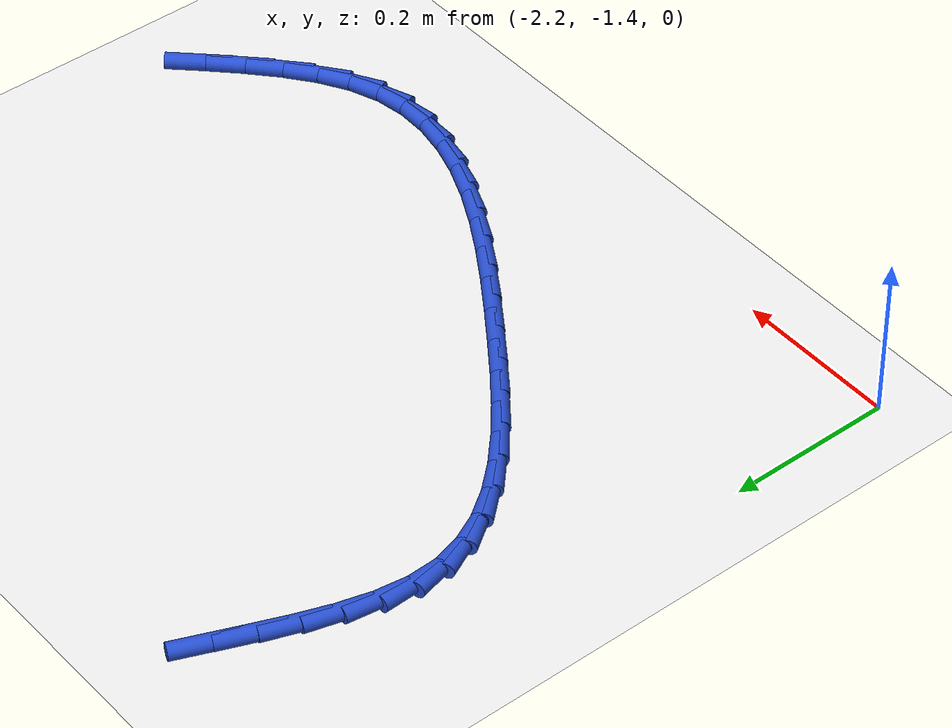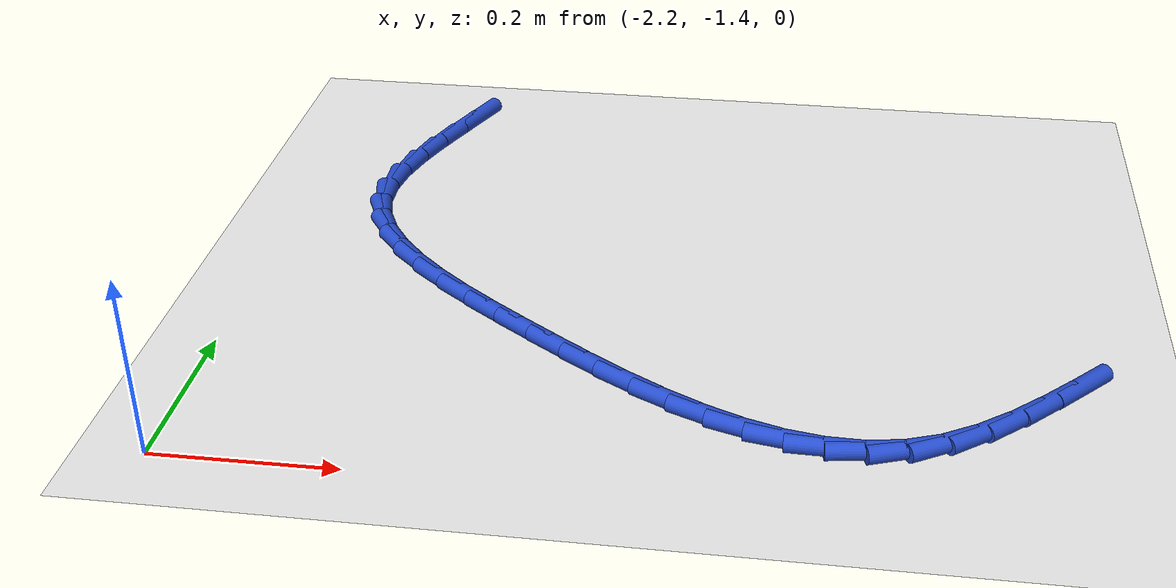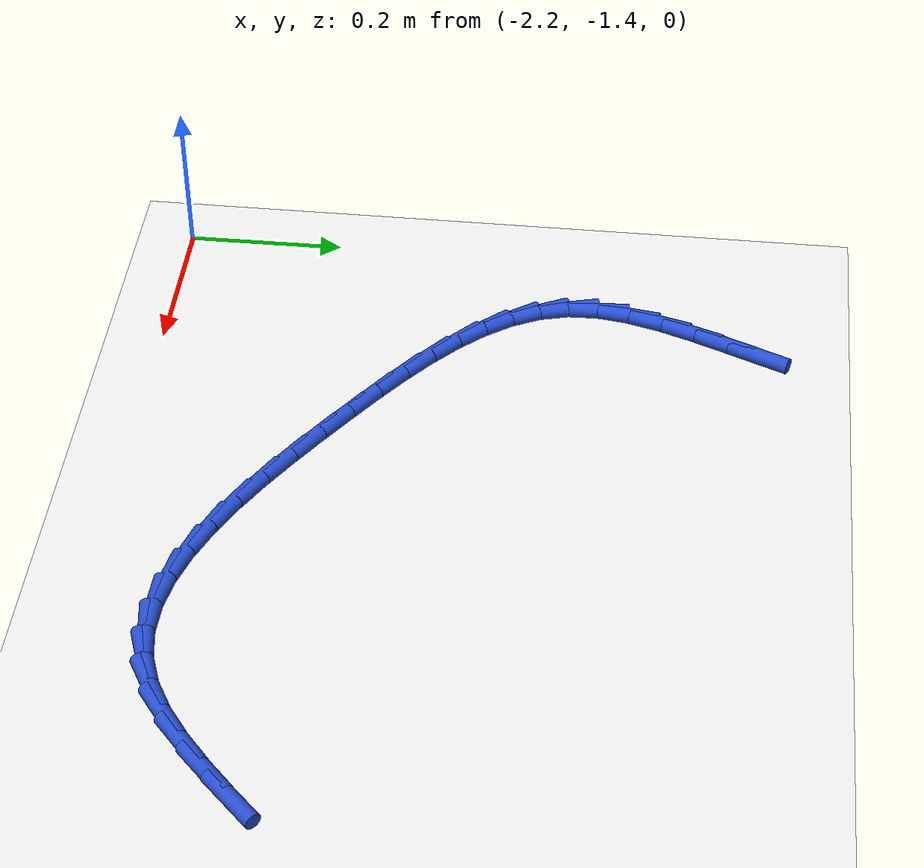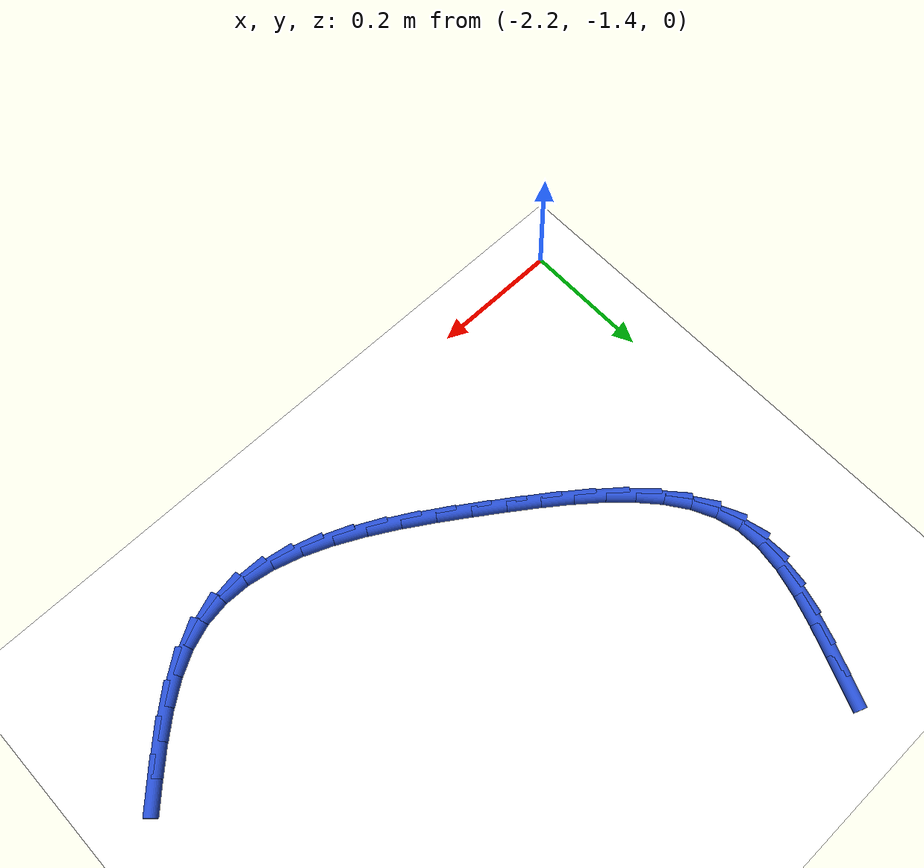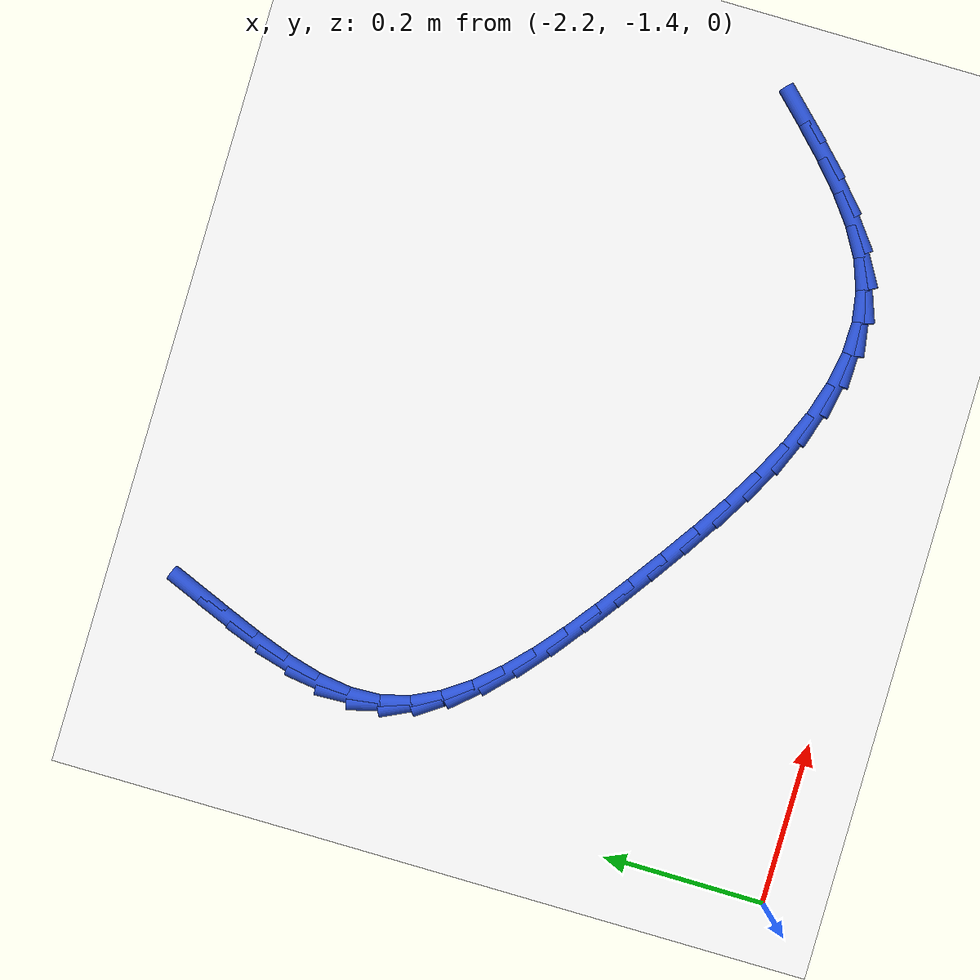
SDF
<sdf version="1.6">
 <world name="default">
  <model name="ground_plane">
   <static>1</static>
   <link name="link">
    <collision name="collision">
     <geometry><plane><normal>0 0 1</normal><size>100 100</size></plane></geometry>
     <surface><friction><ode><mu>100</mu><mu2>50</mu2></ode></friction></surface>
    </collision>
    <visual name="visual">
     <cast_shadows>0</cast_shadows>
     <geometry><plane><normal>0 0 1</normal><size>100 100</size></plane></geometry>
     <material>
      <script><uri>file://media/materials/scripts/gazebo.material</uri><name>Gazebo/WhiteGlow</name></script>
     </material>
    </visual>
   </link>
  </model>
  <model name="line">
   <link name="link_103">
    <pose>-2.0301431449412486 -0.6431760372272682 0.01 0 1.57 1.1762117406984114</pose>
    <collision name="collision">
     <geometry><cylinder><radius>0.01</radius><length>0.08</length></cylinder></geometry>
    </collision>
    <visual name="visual">
     <material>
      <script><name>Gazebo/Blue</name><uri>file://media/materials/scripts/gazebo.material</uri></script>
     </material>
     <geometry><cylinder><radius>0.01</radius><length>0.08</length></cylinder></geometry>
    </visual>
   </link>
   <link name="link_104">
    <pose>-2.047849991314228 -0.6856972025003046 0.01 0 1.57 1.1854771524762735</pose>
    <collision name="collision">
     <geometry><cylinder><radius>0.01</radius><length>0.08</length></cylinder></geometry>
    </collision>
    <visual name="visual">
     <material>
      <script><name>Gazebo/Blue</name><uri>file://media/materials/scripts/gazebo.material</uri></script>
     </material>
     <geometry><cylinder><radius>0.01</radius><length>0.08</length></cylinder></geometry>
    </visual>
   </link>
   <link name="link_105">
    <pose>-2.06502794714183 -0.7280498269964726 0.01 0 1.57 1.2265013167445675</pose>
    <collision name="collision">
     <geometry><cylinder><radius>0.01</radius><length>0.08</length></cylinder></geometry>
    </collision>
    <visual name="visual">
     <material>
      <script><name>Gazebo/Blue</name><uri>file://media/materials/scripts/gazebo.material</uri></script>
     </material>
     <geometry><cylinder><radius>0.01</radius><length>0.08</length></cylinder></geometry>
    </visual>
   </link>
   <link name="link_106">
    <pose>-2.080032477931388 -0.7698945162749997 0.01 0 1.57 1.3044200234111163</pose>
    <collision name="collision">
     <geometry><cylinder><radius>0.01</radius><length>0.08</length></cylinder></geometry>
    </collision>
    <visual name="visual">
     <material>
      <script><name>Gazebo/Blue</name><uri>file://media/materials/scripts/gazebo.material</uri></script>
     </material>
     <geometry><cylinder><radius>0.01</radius><length>0.08</length></cylinder></geometry>
    </visual>
   </link>
   <link name="link_107">
    <pose>-2.091219049190233 -0.810891875895113 0.01 0 1.57 1.427992428332047</pose>
    <collision name="collision">
     <geometry><cylinder><radius>0.01</radius><length>0.08</length></cylinder></geometry>
    </collision>
    <visual name="visual">
     <material>
      <script><name>Gazebo/Blue</name><uri>file://media/materials/scripts/gazebo.material</uri></script>
     </material>
     <geometry><cylinder><radius>0.01</radius><length>0.08</length></cylinder></geometry>
    </visual>
   </link>
   <link name="link_108">
    <pose>-2.0969431264256957 -0.8507025114160396 0.01 0 1.57 -1.5347276165737962</pose>
    <collision name="collision">
     <geometry><cylinder><radius>0.01</radius><length>0.08</length></cylinder></geometry>
    </collision>
    <visual name="visual">
     <material>
      <script><name>Gazebo/Blue</name><uri>file://media/materials/scripts/gazebo.material</uri></script>
     </material>
     <geometry><cylinder><radius>0.01</radius><length>0.08</length></cylinder></geometry>
    </visual>
   </link>
   <link name="link_109">
    <pose>-2.0955616433839954 -0.8889873267114714 0.01 0 1.57 -1.3172273057758372</pose>
    <collision name="collision">
     <geometry><cylinder><radius>0.01</radius><length>0.08</length></cylinder></geometry>
    </collision>
    <visual name="visual">
     <material>
      <script><name>Gazebo/Blue</name><uri>file://media/materials/scripts/gazebo.material</uri></script>
     </material>
     <geometry><cylinder><radius>0.01</radius><length>0.08</length></cylinder></geometry>
    </visual>
   </link>
   <link name="link_110">
    <pose>-2.08608891797963 -0.9255407919350799 0.01 0 1.57 -1.121461491586728</pose>
    <collision name="collision">
     <geometry><cylinder><radius>0.01</radius><length>0.08</length></cylinder></geometry>
    </collision>
    <visual name="visual">
     <material>
      <script><name>Gazebo/Blue</name><uri>file://media/materials/scripts/gazebo.material</uri></script>
     </material>
     <geometry><cylinder><radius>0.01</radius><length>0.08</length></cylinder></geometry>
    </visual>
   </link>
   <link name="link_111">
    <pose>-2.0692299390866697 -0.9605008851034232 0.01 0 1.57 -0.9644680126302632</pose>
    <collision name="collision">
     <geometry><cylinder><radius>0.01</radius><length>0.08</length></cylinder></geometry>
    </collision>
    <visual name="visual">
     <material>
      <script><name>Gazebo/Blue</name><uri>file://media/materials/scripts/gazebo.material</uri></script>
     </material>
     <geometry><cylinder><radius>0.01</radius><length>0.08</length></cylinder></geometry>
    </visual>
   </link>
   <link name="link_112">
    <pose>-2.0459577487908316 -0.9940600468624385 0.01 0 1.57 -0.8449106869923207</pose>
    <collision name="collision">
     <geometry><cylinder><radius>0.01</radius><length>0.08</length></cylinder></geometry>
    </collision>
    <visual name="visual">
     <material>
      <script><name>Gazebo/Blue</name><uri>file://media/materials/scripts/gazebo.material</uri></script>
     </material>
     <geometry><cylinder><radius>0.01</radius><length>0.08</length></cylinder></geometry>
    </visual>
   </link>
   <link name="link_113">
    <pose>-2.01724538917783 -1.0264107178580617 0.01 0 1.57 -0.7568096360408149</pose>
    <collision name="collision">
     <geometry><cylinder><radius>0.01</radius><length>0.08</length></cylinder></geometry>
    </collision>
    <visual name="visual">
     <material>
      <script><name>Gazebo/Blue</name><uri>file://media/materials/scripts/gazebo.material</uri></script>
     </material>
     <geometry><cylinder><radius>0.01</radius><length>0.08</length></cylinder></geometry>
    </visual>
   </link>
   <link name="link_114">
    <pose>-1.984065902333378 -1.0577453387362283 0.01 0 1.57 -0.6939283076275171</pose>
    <collision name="collision">
     <geometry><cylinder><radius>0.01</radius><length>0.08</length></cylinder></geometry>
    </collision>
    <visual name="visual">
     <material>
      <script><name>Gazebo/Blue</name><uri>file://media/materials/scripts/gazebo.material</uri></script>
     </material>
     <geometry><cylinder><radius>0.01</radius><length>0.08</length></cylinder></geometry>
    </visual>
   </link>
   <link name="link_115">
    <pose>-1.9473923303431901 -1.0882563501428757 0.01 0 1.57 -0.6513555896569337</pose>
    <collision name="collision">
     <geometry><cylinder><radius>0.01</radius><length>0.08</length></cylinder></geometry>
    </collision>
    <visual name="visual">
     <material>
      <script><name>Gazebo/Blue</name><uri>file://media/materials/scripts/gazebo.material</uri></script>
     </material>
     <geometry><cylinder><radius>0.01</radius><length>0.08</length></cylinder></geometry>
    </visual>
   </link>
   <link name="link_116">
    <pose>-1.9081977152929825 -1.1181361927239388 0.01 0 1.57 -0.6257413349231378</pose>
    <collision name="collision">
     <geometry><cylinder><radius>0.01</radius><length>0.08</length></cylinder></geometry>
    </collision>
    <visual name="visual">
     <material>
      <script><name>Gazebo/Blue</name><uri>file://media/materials/scripts/gazebo.material</uri></script>
     </material>
     <geometry><cylinder><radius>0.01</radius><length>0.08</length></cylinder></geometry>
    </visual>
   </link>
   <link name="link_117">
    <pose>-1.8674550992684693 -1.1475773071253543 0.01 0 1.57 -0.6133267885039331</pose>
    <collision name="collision">
     <geometry><cylinder><radius>0.01</radius><length>0.08</length></cylinder></geometry>
    </collision>
    <visual name="visual">
     <material>
      <script><name>Gazebo/Blue</name><uri>file://media/materials/scripts/gazebo.material</uri></script>
     </material>
     <geometry><cylinder><radius>0.01</radius><length>0.08</length></cylinder></geometry>
    </visual>
   </link>
   <link name="link_118">
    <pose>-1.826077266635734 -1.176702431323154 0.01 0 1.57 -0.5977464727862912</pose>
    <collision name="collision">
     <geometry><cylinder><radius>0.01</radius><length>0.08</length></cylinder></geometry>
    </collision>
    <visual name="visual">
     <material>
      <script><name>Gazebo/Blue</name><uri>file://media/materials/scripts/gazebo.material</uri></script>
     </material>
     <geometry><cylinder><radius>0.01</radius><length>0.08</length></cylinder></geometry>
    </visual>
   </link>
   <link name="link_119">
    <pose>-1.7844603266702903 -1.2050366432174893 0.01 0 1.57 -0.5703648764972896</pose>
    <collision name="collision">
     <geometry><cylinder><radius>0.01</radius><length>0.08</length></cylinder></geometry>
    </collision>
    <visual name="visual">
     <material>
      <script><name>Gazebo/Blue</name><uri>file://media/materials/scripts/gazebo.material</uri></script>
     </material>
     <geometry><cylinder><radius>0.01</radius><length>0.08</length></cylinder></geometry>
    </visual>
   </link>
   <link name="link_120">
    <pose>-1.7427376223404374 -1.2318010677330895 0.01 0 1.57 -0.5296832360924953</pose>
    <collision name="collision">
     <geometry><cylinder><radius>0.01</radius><length>0.08</length></cylinder></geometry>
    </collision>
    <visual name="visual">
     <material>
      <script><name>Gazebo/Blue</name><uri>file://media/materials/scripts/gazebo.material</uri></script>
     </material>
     <geometry><cylinder><radius>0.01</radius><length>0.08</length></cylinder></geometry>
    </visual>
   </link>
   <link name="link_121">
    <pose>-1.7010404206032856 -1.2562144283841459 0.01 0 1.57 -0.47343639143580135</pose>
    <collision name="collision">
     <geometry><cylinder><radius>0.01</radius><length>0.08</length></cylinder></geometry>
    </collision>
    <visual name="visual">
     <material>
      <script><name>Gazebo/Blue</name><uri>file://media/materials/scripts/gazebo.material</uri></script>
     </material>
     <geometry><cylinder><radius>0.01</radius><length>0.08</length></cylinder></geometry>
    </visual>
   </link>
   <link name="link_122">
    <pose>-1.6594999884159416 -1.2774954486848498 0.01 0 1.57 -0.39848072228137044</pose>
    <collision name="collision">
     <geometry><cylinder><radius>0.01</radius><length>0.08</length></cylinder></geometry>
    </collision>
    <visual name="visual">
     <material>
      <script><name>Gazebo/Blue</name><uri>file://media/materials/scripts/gazebo.material</uri></script>
     </material>
     <geometry><cylinder><radius>0.01</radius><length>0.08</length></cylinder></geometry>
    </visual>
   </link>
   <link name="link_123">
    <pose>-1.6182475927355138 -1.2948628521493923 0.01 0 1.57 -0.3009240582242849</pose>
    <collision name="collision">
     <geometry><cylinder><radius>0.01</radius><length>0.08</length></cylinder></geometry>
    </collision>
    <visual name="visual">
     <material>
      <script><name>Gazebo/Blue</name><uri>file://media/materials/scripts/gazebo.material</uri></script>
     </material>
     <geometry><cylinder><radius>0.01</radius><length>0.08</length></cylinder></geometry>
    </visual>
   </link>
   <link name="link_124">
    <pose>-1.5774145005191098 -1.3075353622919648 0.01 0 1.57 -0.17678181848836433</pose>
    <collision name="collision">
     <geometry><cylinder><radius>0.01</radius><length>0.08</length></cylinder></geometry>
    </collision>
    <visual name="visual">
     <material>
      <script><name>Gazebo/Blue</name><uri>file://media/materials/scripts/gazebo.material</uri></script>
     </material>
     <geometry><cylinder><radius>0.01</radius><length>0.08</length></cylinder></geometry>
    </visual>
   </link>
   <link name="link_125">
    <pose>-1.5371319787238384 -1.3147317026267598 0.01 0 1.57 -0.02370459478513368</pose>
    <collision name="collision">
     <geometry><cylinder><radius>0.01</radius><length>0.08</length></cylinder></geometry>
    </collision>
    <visual name="visual">
     <material>
      <script><name>Gazebo/Blue</name><uri>file://media/materials/scripts/gazebo.material</uri></script>
     </material>
     <geometry><cylinder><radius>0.01</radius><length>0.08</length></cylinder></geometry>
    </visual>
   </link>
   <link name="link_126">
    <pose>-1.497531294306806 -1.315670596667967 0.01 0 1.57 0.15598488151547066</pose>
    <collision name="collision">
     <geometry><cylinder><radius>0.01</radius><length>0.08</length></cylinder></geometry>
    </collision>
    <visual name="visual">
     <material>
      <script><name>Gazebo/Blue</name><uri>file://media/materials/scripts/gazebo.material</uri></script>
     </material>
     <geometry><cylinder><radius>0.01</radius><length>0.08</length></cylinder></geometry>
    </visual>
   </link>
   <link name="link_127">
    <pose>-1.4587437142251227 -1.3095707679297786 0.01 0 1.57 0.3520001153496848</pose>
    <collision name="collision">
     <geometry><cylinder><radius>0.01</radius><length>0.08</length></cylinder></geometry>
    </collision>
    <visual name="visual">
     <material>
      <script><name>Gazebo/Blue</name><uri>file://media/materials/scripts/gazebo.material</uri></script>
     </material>
     <geometry><cylinder><radius>0.01</radius><length>0.08</length></cylinder></geometry>
    </visual>
   </link>
   <link name="link_128">
    <pose>-1.4208982964665182 -1.295670267991247 0.01 0 1.57 0.5279557095951489</pose>
    <collision name="collision">
     <geometry><cylinder><radius>0.01</radius><length>0.08</length></cylinder></geometry>
    </collision>
    <visual name="visual">
     <material>
      <script><name>Gazebo/Blue</name><uri>file://media/materials/scripts/gazebo.material</uri></script>
     </material>
     <geometry><cylinder><radius>0.01</radius><length>0.08</length></cylinder></geometry>
    </visual>
   </link>
   <link name="link_129">
    <pose>-1.3840150924901147 -1.2741609349695242 0.01 0 1.57 0.6525334100492634</pose>
    <collision name="collision">
     <geometry><cylinder><radius>0.01</radius><length>0.08</length></cylinder></geometry>
    </collision>
    <visual name="visual">
     <material>
      <script><name>Gazebo/Blue</name><uri>file://media/materials/scripts/gazebo.material</uri></script>
     </material>
     <geometry><cylinder><radius>0.01</radius><length>0.08</length></cylinder></geometry>
    </visual>
   </link>
   <link name="link_130">
    <pose>-1.3479574917704398 -1.2466053697594075 0.01 0 1.57 0.7342241766668892</pose>
    <collision name="collision">
     <geometry><cylinder><radius>0.01</radius><length>0.08</length></cylinder></geometry>
    </collision>
    <visual name="visual">
     <material>
      <script><name>Gazebo/Blue</name><uri>file://media/materials/scripts/gazebo.material</uri></script>
     </material>
     <geometry><cylinder><radius>0.01</radius><length>0.08</length></cylinder></geometry>
    </visual>
   </link>
   <link name="link_131">
    <pose>-1.3125767489616444 -1.2146723506421702 0.01 0 1.57 0.7823628816972275</pose>
    <collision name="collision">
     <geometry><cylinder><radius>0.01</radius><length>0.08</length></cylinder></geometry>
    </collision>
    <visual name="visual">
     <material>
      <script><name>Gazebo/Blue</name><uri>file://media/materials/scripts/gazebo.material</uri></script>
     </material>
     <geometry><cylinder><radius>0.01</radius><length>0.08</length></cylinder></geometry>
    </visual>
   </link>
   <link name="link_132">
    <pose>-1.277724118717882 -1.1800306558990883 0.01 0 1.57 0.8026202016423759</pose>
    <collision name="collision">
     <geometry><cylinder><radius>0.01</radius><length>0.08</length></cylinder></geometry>
    </collision>
    <visual name="visual">
     <material>
      <script><name>Gazebo/Blue</name><uri>file://media/materials/scripts/gazebo.material</uri></script>
     </material>
     <geometry><cylinder><radius>0.01</radius><length>0.08</length></cylinder></geometry>
    </visual>
   </link>
  </model>
 </world>
</sdf>
